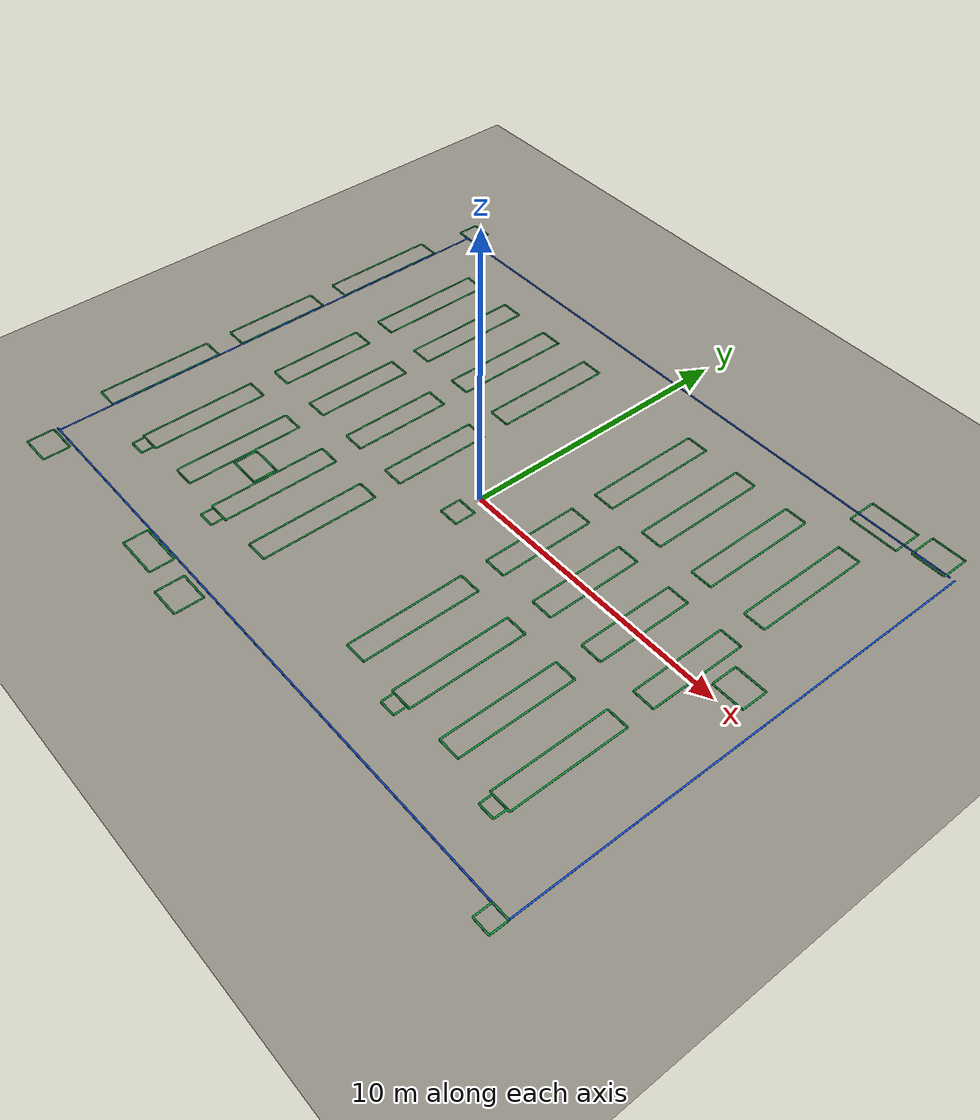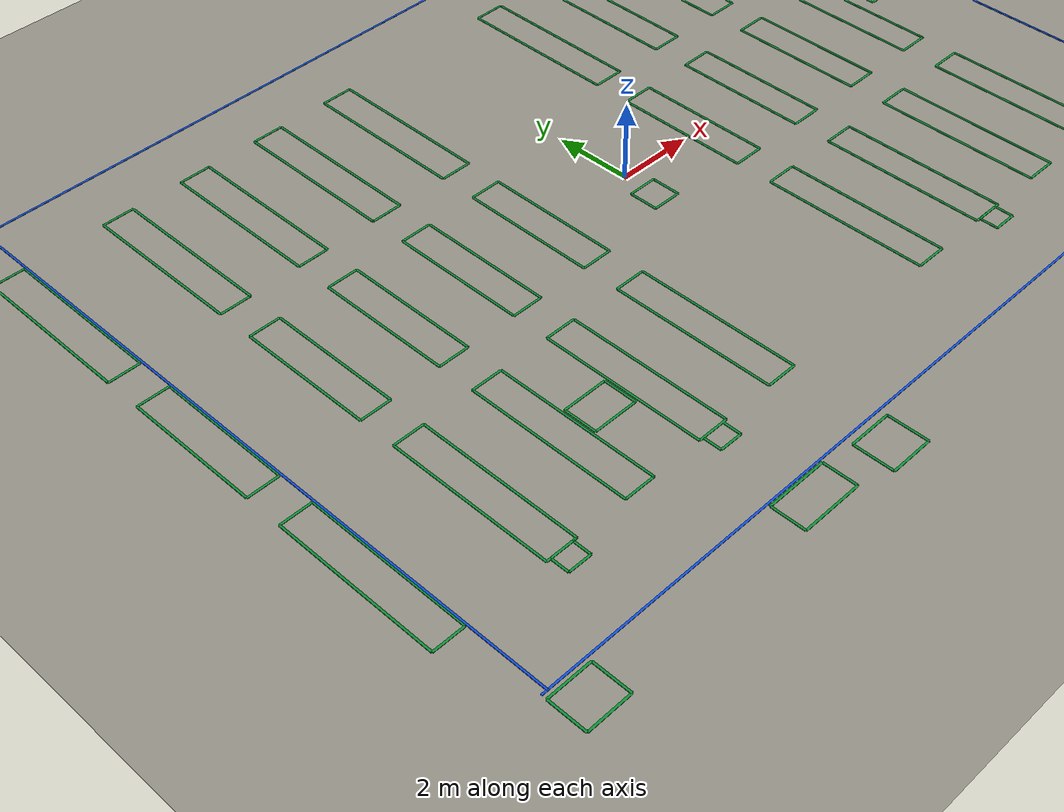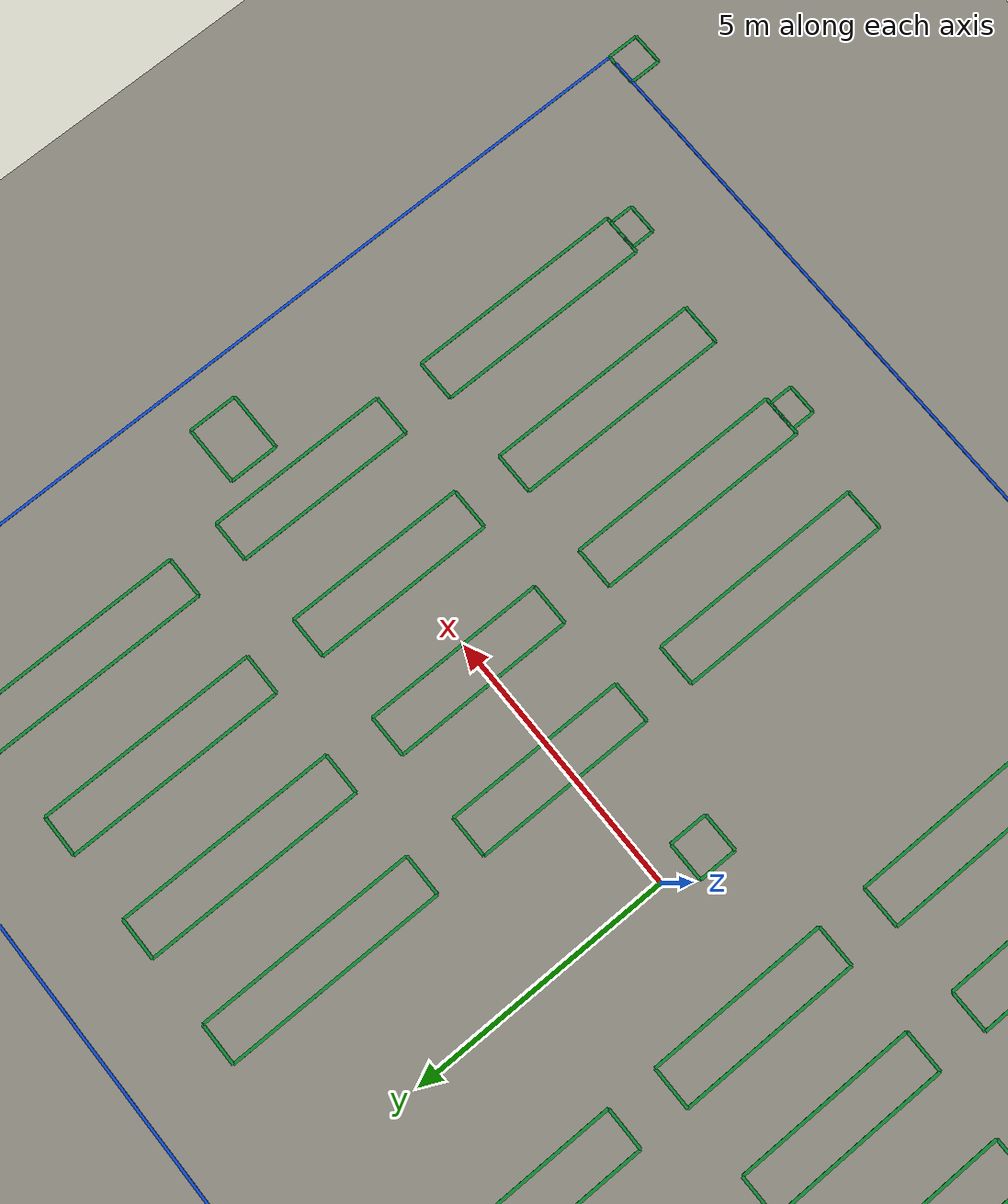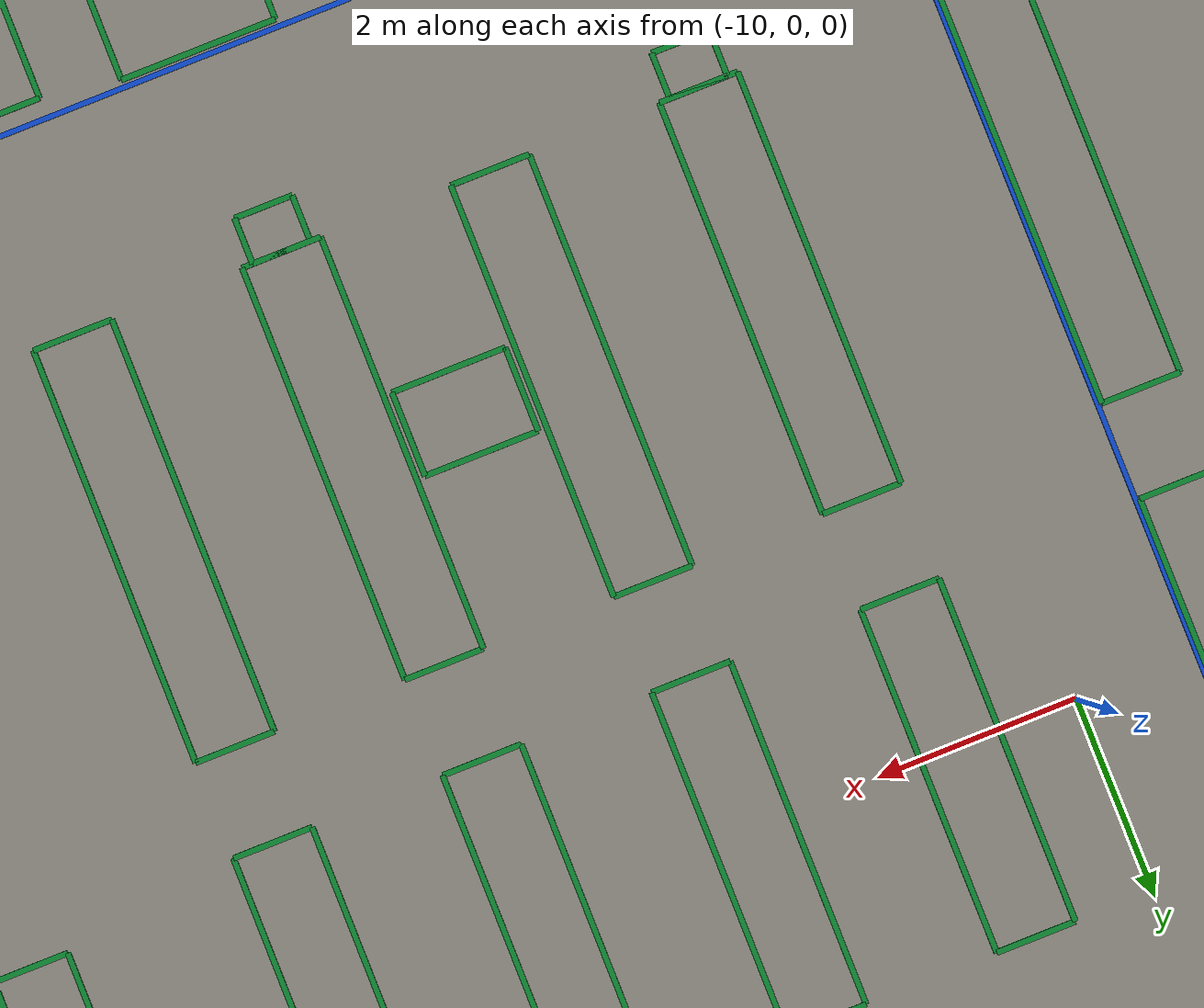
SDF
<sdf version="1.8">
 <world name="warehouse_full_4cam_laptop_640x360_3hz">
  <model name="ground_plane">
   <static>true</static>
   <link name="link">
    <collision name="collision">
     <geometry><plane><normal>0 0 1</normal><size>24.5 20.5</size></plane></geometry>
    </collision>
    <visual name="visual">
     <geometry><plane><normal>0 0 1</normal><size>24.5 20.5</size></plane></geometry>
     <material>
      <ambient>0.56 0.55 0.51 1</ambient>
      <diffuse>0.56 0.55 0.51 1</diffuse>
      <specular>0.05 0.05 0.05 1</specular>
     </material>
    </visual>
   </link>
  </model>
  <model name="known_driveable_boundary">
   <static>true</static>
   <link name="bnd_s">
    <pose>0.000 -8.600 0.035 0 0 0</pose>
    <visual name="visual">
     <geometry><box><size>22.700 0.050 0.014</size></box></geometry>
     <material><ambient>0.05 0.30 0.85 1</ambient><diffuse>0.05 0.30 0.85 1</diffuse></material>
    </visual>
   </link>
   <link name="bnd_n">
    <pose>0.000 8.600 0.035 0 0 0</pose>
    <visual name="visual">
     <geometry><box><size>22.700 0.050 0.014</size></box></geometry>
     <material><ambient>0.05 0.30 0.85 1</ambient><diffuse>0.05 0.30 0.85 1</diffuse></material>
    </visual>
   </link>
   <link name="bnd_w">
    <pose>-11.200 0.000 0.035 0 0 0</pose>
    <visual name="visual">
     <geometry><box><size>0.050 17.200 0.014</size></box></geometry>
     <material><ambient>0.05 0.30 0.85 1</ambient><diffuse>0.05 0.30 0.85 1</diffuse></material>
    </visual>
   </link>
   <link name="bnd_e">
    <pose>11.500 0.000 0.035 0 0 0</pose>
    <visual name="visual">
     <geometry><box><size>0.050 17.200 0.014</size></box></geometry>
     <material><ambient>0.05 0.30 0.85 1</ambient><diffuse>0.05 0.30 0.85 1</diffuse></material>
    </visual>
   </link>
   <link name="nogo_W1_south_outline_s">
    <pose>-8.825 -6.620 0.035 0 0 0</pose>
    <visual name="visual">
     <geometry><box><size>0.790 0.055 0.014</size></box></geometry>
     <material><ambient>0.05 0.55 0.20 1</ambient><diffuse>0.05 0.55 0.20 1</diffuse></material>
    </visual>
   </link>
   <link name="nogo_W1_south_outline_n">
    <pose>-8.825 -2.480 0.035 0 0 0</pose>
    <visual name="visual">
     <geometry><box><size>0.790 0.055 0.014</size></box></geometry>
     <material><ambient>0.05 0.55 0.20 1</ambient><diffuse>0.05 0.55 0.20 1</diffuse></material>
    </visual>
   </link>
   <link name="nogo_W1_south_outline_w">
    <pose>-9.220 -4.550 0.035 0 0 0</pose>
    <visual name="visual">
     <geometry><box><size>0.055 4.140 0.014</size></box></geometry>
     <material><ambient>0.05 0.55 0.20 1</ambient><diffuse>0.05 0.55 0.20 1</diffuse></material>
    </visual>
   </link>
   <link name="nogo_W1_south_outline_e">
    <pose>-8.430 -4.550 0.035 0 0 0</pose>
    <visual name="visual">
     <geometry><box><size>0.055 4.140 0.014</size></box></geometry>
     <material><ambient>0.05 0.55 0.20 1</ambient><diffuse>0.05 0.55 0.20 1</diffuse></material>
    </visual>
   </link>
   <link name="nogo_W1_mid_outline_s">
    <pose>-8.825 -1.520 0.035 0 0 0</pose>
    <visual name="visual">
     <geometry><box><size>0.790 0.055 0.014</size></box></geometry>
     <material><ambient>0.05 0.55 0.20 1</ambient><diffuse>0.05 0.55 0.20 1</diffuse></material>
    </visual>
   </link>
   <link name="nogo_W1_mid_outline_n">
    <pose>-8.825 1.920 0.035 0 0 0</pose>
    <visual name="visual">
     <geometry><box><size>0.790 0.055 0.014</size></box></geometry>
     <material><ambient>0.05 0.55 0.20 1</ambient><diffuse>0.05 0.55 0.20 1</diffuse></material>
    </visual>
   </link>
   <link name="nogo_W1_mid_outline_w">
    <pose>-9.220 0.200 0.035 0 0 0</pose>
    <visual name="visual">
     <geometry><box><size>0.055 3.440 0.014</size></box></geometry>
     <material><ambient>0.05 0.55 0.20 1</ambient><diffuse>0.05 0.55 0.20 1</diffuse></material>
    </visual>
   </link>
   <link name="nogo_W1_mid_outline_e">
    <pose>-8.430 0.200 0.035 0 0 0</pose>
    <visual name="visual">
     <geometry><box><size>0.055 3.440 0.014</size></box></geometry>
     <material><ambient>0.05 0.55 0.20 1</ambient><diffuse>0.05 0.55 0.20 1</diffuse></material>
    </visual>
   </link>
   <link name="nogo_W1_north_outline_s">
    <pose>-8.825 2.880 0.035 0 0 0</pose>
    <visual name="visual">
     <geometry><box><size>0.790 0.055 0.014</size></box></geometry>
     <material><ambient>0.05 0.55 0.20 1</ambient><diffuse>0.05 0.55 0.20 1</diffuse></material>
    </visual>
   </link>
   <link name="nogo_W1_north_outline_n">
    <pose>-8.825 7.020 0.035 0 0 0</pose>
    <visual name="visual">
     <geometry><box><size>0.790 0.055 0.014</size></box></geometry>
     <material><ambient>0.05 0.55 0.20 1</ambient><diffuse>0.05 0.55 0.20 1</diffuse></material>
    </visual>
   </link>
   <link name="nogo_W1_north_outline_w">
    <pose>-9.220 4.950 0.035 0 0 0</pose>
    <visual name="visual">
     <geometry><box><size>0.055 4.140 0.014</size></box></geometry>
     <material><ambient>0.05 0.55 0.20 1</ambient><diffuse>0.05 0.55 0.20 1</diffuse></material>
    </visual>
   </link>
   <link name="nogo_W1_north_outline_e">
    <pose>-8.430 4.950 0.035 0 0 0</pose>
    <visual name="visual">
     <geometry><box><size>0.055 4.140 0.014</size></box></geometry>
     <material><ambient>0.05 0.55 0.20 1</ambient><diffuse>0.05 0.55 0.20 1</diffuse></material>
    </visual>
   </link>
   <link name="nogo_W2_south_outline_s">
    <pose>-6.725 -6.620 0.035 0 0 0</pose>
    <visual name="visual">
     <geometry><box><size>0.790 0.055 0.014</size></box></geometry>
     <material><ambient>0.05 0.55 0.20 1</ambient><diffuse>0.05 0.55 0.20 1</diffuse></material>
    </visual>
   </link>
   <link name="nogo_W2_south_outline_n">
    <pose>-6.725 -2.480 0.035 0 0 0</pose>
    <visual name="visual">
     <geometry><box><size>0.790 0.055 0.014</size></box></geometry>
     <material><ambient>0.05 0.55 0.20 1</ambient><diffuse>0.05 0.55 0.20 1</diffuse></material>
    </visual>
   </link>
   <link name="nogo_W2_south_outline_w">
    <pose>-7.120 -4.550 0.035 0 0 0</pose>
    <visual name="visual">
     <geometry><box><size>0.055 4.140 0.014</size></box></geometry>
     <material><ambient>0.05 0.55 0.20 1</ambient><diffuse>0.05 0.55 0.20 1</diffuse></material>
    </visual>
   </link>
   <link name="nogo_W2_south_outline_e">
    <pose>-6.330 -4.550 0.035 0 0 0</pose>
    <visual name="visual">
     <geometry><box><size>0.055 4.140 0.014</size></box></geometry>
     <material><ambient>0.05 0.55 0.20 1</ambient><diffuse>0.05 0.55 0.20 1</diffuse></material>
    </visual>
   </link>
   <link name="nogo_W2_mid_outline_s">
    <pose>-6.725 -1.520 0.035 0 0 0</pose>
    <visual name="visual">
     <geometry><box><size>0.790 0.055 0.014</size></box></geometry>
     <material><ambient>0.05 0.55 0.20 1</ambient><diffuse>0.05 0.55 0.20 1</diffuse></material>
    </visual>
   </link>
   <link name="nogo_W2_mid_outline_n">
    <pose>-6.725 1.920 0.035 0 0 0</pose>
    <visual name="visual">
     <geometry><box><size>0.790 0.055 0.014</size></box></geometry>
     <material><ambient>0.05 0.55 0.20 1</ambient><diffuse>0.05 0.55 0.20 1</diffuse></material>
    </visual>
   </link>
   <link name="nogo_W2_mid_outline_w">
    <pose>-7.120 0.200 0.035 0 0 0</pose>
    <visual name="visual">
     <geometry><box><size>0.055 3.440 0.014</size></box></geometry>
     <material><ambient>0.05 0.55 0.20 1</ambient><diffuse>0.05 0.55 0.20 1</diffuse></material>
    </visual>
   </link>
   <link name="nogo_W2_mid_outline_e">
    <pose>-6.330 0.200 0.035 0 0 0</pose>
    <visual name="visual">
     <geometry><box><size>0.055 3.440 0.014</size></box></geometry>
     <material><ambient>0.05 0.55 0.20 1</ambient><diffuse>0.05 0.55 0.20 1</diffuse></material>
    </visual>
   </link>
   <link name="nogo_W2_north_outline_s">
    <pose>-6.725 2.880 0.035 0 0 0</pose>
    <visual name="visual">
     <geometry><box><size>0.790 0.055 0.014</size></box></geometry>
     <material><ambient>0.05 0.55 0.20 1</ambient><diffuse>0.05 0.55 0.20 1</diffuse></material>
    </visual>
   </link>
   <link name="nogo_W2_north_outline_n">
    <pose>-6.725 7.020 0.035 0 0 0</pose>
    <visual name="visual">
     <geometry><box><size>0.790 0.055 0.014</size></box></geometry>
     <material><ambient>0.05 0.55 0.20 1</ambient><diffuse>0.05 0.55 0.20 1</diffuse></material>
    </visual>
   </link>
   <link name="nogo_W2_north_outline_w">
    <pose>-7.120 4.950 0.035 0 0 0</pose>
    <visual name="visual">
     <geometry><box><size>0.055 4.140 0.014</size></box></geometry>
     <material><ambient>0.05 0.55 0.20 1</ambient><diffuse>0.05 0.55 0.20 1</diffuse></material>
    </visual>
   </link>
   <link name="nogo_W2_north_outline_e">
    <pose>-6.330 4.950 0.035 0 0 0</pose>
    <visual name="visual">
     <geometry><box><size>0.055 4.140 0.014</size></box></geometry>
     <material><ambient>0.05 0.55 0.20 1</ambient><diffuse>0.05 0.55 0.20 1</diffuse></material>
    </visual>
   </link>
   <link name="nogo_W3_south_outline_s">
    <pose>-4.625 -6.620 0.035 0 0 0</pose>
    <visual name="visual">
     <geometry><box><size>0.790 0.055 0.014</size></box></geometry>
     <material><ambient>0.05 0.55 0.20 1</ambient><diffuse>0.05 0.55 0.20 1</diffuse></material>
    </visual>
   </link>
   <link name="nogo_W3_south_outline_n">
    <pose>-4.625 -2.480 0.035 0 0 0</pose>
    <visual name="visual">
     <geometry><box><size>0.790 0.055 0.014</size></box></geometry>
     <material><ambient>0.05 0.55 0.20 1</ambient><diffuse>0.05 0.55 0.20 1</diffuse></material>
    </visual>
   </link>
   <link name="nogo_W3_south_outline_w">
    <pose>-5.020 -4.550 0.035 0 0 0</pose>
    <visual name="visual">
     <geometry><box><size>0.055 4.140 0.014</size></box></geometry>
     <material><ambient>0.05 0.55 0.20 1</ambient><diffuse>0.05 0.55 0.20 1</diffuse></material>
    </visual>
   </link>
   <link name="nogo_W3_south_outline_e">
    <pose>-4.230 -4.550 0.035 0 0 0</pose>
    <visual name="visual">
     <geometry><box><size>0.055 4.140 0.014</size></box></geometry>
     <material><ambient>0.05 0.55 0.20 1</ambient><diffuse>0.05 0.55 0.20 1</diffuse></material>
    </visual>
   </link>
   <link name="nogo_W3_mid_outline_s">
    <pose>-4.625 -1.520 0.035 0 0 0</pose>
    <visual name="visual">
     <geometry><box><size>0.790 0.055 0.014</size></box></geometry>
     <material><ambient>0.05 0.55 0.20 1</ambient><diffuse>0.05 0.55 0.20 1</diffuse></material>
    </visual>
   </link>
   <link name="nogo_W3_mid_outline_n">
    <pose>-4.625 1.920 0.035 0 0 0</pose>
    <visual name="visual">
     <geometry><box><size>0.790 0.055 0.014</size></box></geometry>
     <material><ambient>0.05 0.55 0.20 1</ambient><diffuse>0.05 0.55 0.20 1</diffuse></material>
    </visual>
   </link>
   <link name="nogo_W3_mid_outline_w">
    <pose>-5.020 0.200 0.035 0 0 0</pose>
    <visual name="visual">
     <geometry><box><size>0.055 3.440 0.014</size></box></geometry>
     <material><ambient>0.05 0.55 0.20 1</ambient><diffuse>0.05 0.55 0.20 1</diffuse></material>
    </visual>
   </link>
   <link name="nogo_W3_mid_outline_e">
    <pose>-4.230 0.200 0.035 0 0 0</pose>
    <visual name="visual">
     <geometry><box><size>0.055 3.440 0.014</size></box></geometry>
     <material><ambient>0.05 0.55 0.20 1</ambient><diffuse>0.05 0.55 0.20 1</diffuse></material>
    </visual>
   </link>
   <link name="nogo_W3_north_outline_s">
    <pose>-4.625 2.880 0.035 0 0 0</pose>
    <visual name="visual">
     <geometry><box><size>0.790 0.055 0.014</size></box></geometry>
     <material><ambient>0.05 0.55 0.20 1</ambient><diffuse>0.05 0.55 0.20 1</diffuse></material>
    </visual>
   </link>
   <link name="nogo_W3_north_outline_n">
    <pose>-4.625 7.020 0.035 0 0 0</pose>
    <visual name="visual">
     <geometry><box><size>0.790 0.055 0.014</size></box></geometry>
     <material><ambient>0.05 0.55 0.20 1</ambient><diffuse>0.05 0.55 0.20 1</diffuse></material>
    </visual>
   </link>
   <link name="nogo_W3_north_outline_w">
    <pose>-5.020 4.950 0.035 0 0 0</pose>
    <visual name="visual">
     <geometry><box><size>0.055 4.140 0.014</size></box></geometry>
     <material><ambient>0.05 0.55 0.20 1</ambient><diffuse>0.05 0.55 0.20 1</diffuse></material>
    </visual>
   </link>
   <link name="nogo_W3_north_outline_e">
    <pose>-4.230 4.950 0.035 0 0 0</pose>
    <visual name="visual">
     <geometry><box><size>0.055 4.140 0.014</size></box></geometry>
     <material><ambient>0.05 0.55 0.20 1</ambient><diffuse>0.05 0.55 0.20 1</diffuse></material>
    </visual>
   </link>
   <link name="nogo_W4_south_outline_s">
    <pose>-2.525 -6.620 0.035 0 0 0</pose>
    <visual name="visual">
     <geometry><box><size>0.790 0.055 0.014</size></box></geometry>
     <material><ambient>0.05 0.55 0.20 1</ambient><diffuse>0.05 0.55 0.20 1</diffuse></material>
    </visual>
   </link>
   <link name="nogo_W4_south_outline_n">
    <pose>-2.525 -2.480 0.035 0 0 0</pose>
    <visual name="visual">
     <geometry><box><size>0.790 0.055 0.014</size></box></geometry>
     <material><ambient>0.05 0.55 0.20 1</ambient><diffuse>0.05 0.55 0.20 1</diffuse></material>
    </visual>
   </link>
   <link name="nogo_W4_south_outline_w">
    <pose>-2.920 -4.550 0.035 0 0 0</pose>
    <visual name="visual">
     <geometry><box><size>0.055 4.140 0.014</size></box></geometry>
     <material><ambient>0.05 0.55 0.20 1</ambient><diffuse>0.05 0.55 0.20 1</diffuse></material>
    </visual>
   </link>
   <link name="nogo_W4_south_outline_e">
    <pose>-2.130 -4.550 0.035 0 0 0</pose>
    <visual name="visual">
     <geometry><box><size>0.055 4.140 0.014</size></box></geometry>
     <material><ambient>0.05 0.55 0.20 1</ambient><diffuse>0.05 0.55 0.20 1</diffuse></material>
    </visual>
   </link>
   <link name="nogo_W4_mid_outline_s">
    <pose>-2.525 -1.520 0.035 0 0 0</pose>
    <visual name="visual">
     <geometry><box><size>0.790 0.055 0.014</size></box></geometry>
     <material><ambient>0.05 0.55 0.20 1</ambient><diffuse>0.05 0.55 0.20 1</diffuse></material>
    </visual>
   </link>
   <link name="nogo_W4_mid_outline_n">
    <pose>-2.525 1.920 0.035 0 0 0</pose>
    <visual name="visual">
     <geometry><box><size>0.790 0.055 0.014</size></box></geometry>
     <material><ambient>0.05 0.55 0.20 1</ambient><diffuse>0.05 0.55 0.20 1</diffuse></material>
    </visual>
   </link>
   <link name="nogo_W4_mid_outline_w">
    <pose>-2.920 0.200 0.035 0 0 0</pose>
    <visual name="visual">
     <geometry><box><size>0.055 3.440 0.014</size></box></geometry>
     <material><ambient>0.05 0.55 0.20 1</ambient><diffuse>0.05 0.55 0.20 1</diffuse></material>
    </visual>
   </link>
   <link name="nogo_W4_mid_outline_e">
    <pose>-2.130 0.200 0.035 0 0 0</pose>
    <visual name="visual">
     <geometry><box><size>0.055 3.440 0.014</size></box></geometry>
     <material><ambient>0.05 0.55 0.20 1</ambient><diffuse>0.05 0.55 0.20 1</diffuse></material>
    </visual>
   </link>
   <link name="nogo_W4_north_outline_s">
    <pose>-2.525 2.880 0.035 0 0 0</pose>
    <visual name="visual">
     <geometry><box><size>0.790 0.055 0.014</size></box></geometry>
     <material><ambient>0.05 0.55 0.20 1</ambient><diffuse>0.05 0.55 0.20 1</diffuse></material>
    </visual>
   </link>
   <link name="nogo_W4_north_outline_n">
    <pose>-2.525 7.020 0.035 0 0 0</pose>
    <visual name="visual">
     <geometry><box><size>0.790 0.055 0.014</size></box></geometry>
     <material><ambient>0.05 0.55 0.20 1</ambient><diffuse>0.05 0.55 0.20 1</diffuse></material>
    </visual>
   </link>
   <link name="nogo_W4_north_outline_w">
    <pose>-2.920 4.950 0.035 0 0 0</pose>
    <visual name="visual">
     <geometry><box><size>0.055 4.140 0.014</size></box></geometry>
     <material><ambient>0.05 0.55 0.20 1</ambient><diffuse>0.05 0.55 0.20 1</diffuse></material>
    </visual>
   </link>
   <link name="nogo_W4_north_outline_e">
    <pose>-2.130 4.950 0.035 0 0 0</pose>
    <visual name="visual">
     <geometry><box><size>0.055 4.140 0.014</size></box></geometry>
     <material><ambient>0.05 0.55 0.20 1</ambient><diffuse>0.05 0.55 0.20 1</diffuse></material>
    </visual>
   </link>
   <link name="nogo_E1_south_outline_s">
    <pose>2.525 -6.620 0.035 0 0 0</pose>
    <visual name="visual">
     <geometry><box><size>0.790 0.055 0.014</size></box></geometry>
     <material><ambient>0.05 0.55 0.20 1</ambient><diffuse>0.05 0.55 0.20 1</diffuse></material>
    </visual>
   </link>
   <link name="nogo_E1_south_outline_n">
    <pose>2.525 -2.480 0.035 0 0 0</pose>
    <visual name="visual">
     <geometry><box><size>0.790 0.055 0.014</size></box></geometry>
     <material><ambient>0.05 0.55 0.20 1</ambient><diffuse>0.05 0.55 0.20 1</diffuse></material>
    </visual>
   </link>
   <link name="nogo_E1_south_outline_w">
    <pose>2.130 -4.550 0.035 0 0 0</pose>
    <visual name="visual">
     <geometry><box><size>0.055 4.140 0.014</size></box></geometry>
     <material><ambient>0.05 0.55 0.20 1</ambient><diffuse>0.05 0.55 0.20 1</diffuse></material>
    </visual>
   </link>
   <link name="nogo_E1_south_outline_e">
    <pose>2.920 -4.550 0.035 0 0 0</pose>
    <visual name="visual">
     <geometry><box><size>0.055 4.140 0.014</size></box></geometry>
     <material><ambient>0.05 0.55 0.20 1</ambient><diffuse>0.05 0.55 0.20 1</diffuse></material>
    </visual>
   </link>
   <link name="nogo_E1_mid_outline_s">
    <pose>2.525 -1.520 0.035 0 0 0</pose>
    <visual name="visual">
     <geometry><box><size>0.790 0.055 0.014</size></box></geometry>
     <material><ambient>0.05 0.55 0.20 1</ambient><diffuse>0.05 0.55 0.20 1</diffuse></material>
    </visual>
   </link>
   <link name="nogo_E1_mid_outline_n">
    <pose>2.525 1.920 0.035 0 0 0</pose>
    <visual name="visual">
     <geometry><box><size>0.790 0.055 0.014</size></box></geometry>
     <material><ambient>0.05 0.55 0.20 1</ambient><diffuse>0.05 0.55 0.20 1</diffuse></material>
    </visual>
   </link>
   <link name="nogo_E1_mid_outline_w">
    <pose>2.130 0.200 0.035 0 0 0</pose>
    <visual name="visual">
     <geometry><box><size>0.055 3.440 0.014</size></box></geometry>
     <material><ambient>0.05 0.55 0.20 1</ambient><diffuse>0.05 0.55 0.20 1</diffuse></material>
    </visual>
   </link>
   <link name="nogo_E1_mid_outline_e">
    <pose>2.920 0.200 0.035 0 0 0</pose>
    <visual name="visual">
     <geometry><box><size>0.055 3.440 0.014</size></box></geometry>
     <material><ambient>0.05 0.55 0.20 1</ambient><diffuse>0.05 0.55 0.20 1</diffuse></material>
    </visual>
   </link>
   <link name="nogo_E1_north_outline_s">
    <pose>2.525 2.880 0.035 0 0 0</pose>
    <visual name="visual">
     <geometry><box><size>0.790 0.055 0.014</size></box></geometry>
     <material><ambient>0.05 0.55 0.20 1</ambient><diffuse>0.05 0.55 0.20 1</diffuse></material>
    </visual>
   </link>
   <link name="nogo_E1_north_outline_n">
    <pose>2.525 7.020 0.035 0 0 0</pose>
    <visual name="visual">
     <geometry><box><size>0.790 0.055 0.014</size></box></geometry>
     <material><ambient>0.05 0.55 0.20 1</ambient><diffuse>0.05 0.55 0.20 1</diffuse></material>
    </visual>
   </link>
   <link name="nogo_E1_north_outline_w">
    <pose>2.130 4.950 0.035 0 0 0</pose>
    <visual name="visual">
     <geometry><box><size>0.055 4.140 0.014</size></box></geometry>
     <material><ambient>0.05 0.55 0.20 1</ambient><diffuse>0.05 0.55 0.20 1</diffuse></material>
    </visual>
   </link>
   <link name="nogo_E1_north_outline_e">
    <pose>2.920 4.950 0.035 0 0 0</pose>
    <visual name="visual">
     <geometry><box><size>0.055 4.140 0.014</size></box></geometry>
     <material><ambient>0.05 0.55 0.20 1</ambient><diffuse>0.05 0.55 0.20 1</diffuse></material>
    </visual>
   </link>
   <link name="nogo_E2_south_outline_s">
    <pose>4.625 -6.620 0.035 0 0 0</pose>
    <visual name="visual">
     <geometry><box><size>0.790 0.055 0.014</size></box></geometry>
     <material><ambient>0.05 0.55 0.20 1</ambient><diffuse>0.05 0.55 0.20 1</diffuse></material>
    </visual>
   </link>
   <link name="nogo_E2_south_outline_n">
    <pose>4.625 -2.480 0.035 0 0 0</pose>
    <visual name="visual">
     <geometry><box><size>0.790 0.055 0.014</size></box></geometry>
     <material><ambient>0.05 0.55 0.20 1</ambient><diffuse>0.05 0.55 0.20 1</diffuse></material>
    </visual>
   </link>
   <link name="nogo_E2_south_outline_w">
    <pose>4.230 -4.550 0.035 0 0 0</pose>
    <visual name="visual">
     <geometry><box><size>0.055 4.140 0.014</size></box></geometry>
     <material><ambient>0.05 0.55 0.20 1</ambient><diffuse>0.05 0.55 0.20 1</diffuse></material>
    </visual>
   </link>
   <link name="nogo_E2_south_outline_e">
    <pose>5.020 -4.550 0.035 0 0 0</pose>
    <visual name="visual">
     <geometry><box><size>0.055 4.140 0.014</size></box></geometry>
     <material><ambient>0.05 0.55 0.20 1</ambient><diffuse>0.05 0.55 0.20 1</diffuse></material>
    </visual>
   </link>
   <link name="nogo_E2_mid_outline_s">
    <pose>4.625 -1.520 0.035 0 0 0</pose>
    <visual name="visual">
     <geometry><box><size>0.790 0.055 0.014</size></box></geometry>
     <material><ambient>0.05 0.55 0.20 1</ambient><diffuse>0.05 0.55 0.20 1</diffuse></material>
    </visual>
   </link>
   <link name="nogo_E2_mid_outline_n">
    <pose>4.625 1.920 0.035 0 0 0</pose>
    <visual name="visual">
     <geometry><box><size>0.790 0.055 0.014</size></box></geometry>
     <material><ambient>0.05 0.55 0.20 1</ambient><diffuse>0.05 0.55 0.20 1</diffuse></material>
    </visual>
   </link>
   <link name="nogo_E2_mid_outline_w">
    <pose>4.230 0.200 0.035 0 0 0</pose>
    <visual name="visual">
     <geometry><box><size>0.055 3.440 0.014</size></box></geometry>
     <material><ambient>0.05 0.55 0.20 1</ambient><diffuse>0.05 0.55 0.20 1</diffuse></material>
    </visual>
   </link>
   <link name="nogo_E2_mid_outline_e">
    <pose>5.020 0.200 0.035 0 0 0</pose>
    <visual name="visual">
     <geometry><box><size>0.055 3.440 0.014</size></box></geometry>
     <material><ambient>0.05 0.55 0.20 1</ambient><diffuse>0.05 0.55 0.20 1</diffuse></material>
    </visual>
   </link>
   <link name="nogo_E2_north_outline_s">
    <pose>4.625 2.880 0.035 0 0 0</pose>
    <visual name="visual">
     <geometry><box><size>0.790 0.055 0.014</size></box></geometry>
     <material><ambient>0.05 0.55 0.20 1</ambient><diffuse>0.05 0.55 0.20 1</diffuse></material>
    </visual>
   </link>
   <link name="nogo_E2_north_outline_n">
    <pose>4.625 7.020 0.035 0 0 0</pose>
    <visual name="visual">
     <geometry><box><size>0.790 0.055 0.014</size></box></geometry>
     <material><ambient>0.05 0.55 0.20 1</ambient><diffuse>0.05 0.55 0.20 1</diffuse></material>
    </visual>
   </link>
   <link name="nogo_E2_north_outline_w">
    <pose>4.230 4.950 0.035 0 0 0</pose>
    <visual name="visual">
     <geometry><box><size>0.055 4.140 0.014</size></box></geometry>
     <material><ambient>0.05 0.55 0.20 1</ambient><diffuse>0.05 0.55 0.20 1</diffuse></material>
    </visual>
   </link>
   <link name="nogo_E2_north_outline_e">
    <pose>5.020 4.950 0.035 0 0 0</pose>
    <visual name="visual">
     <geometry><box><size>0.055 4.140 0.014</size></box></geometry>
     <material><ambient>0.05 0.55 0.20 1</ambient><diffuse>0.05 0.55 0.20 1</diffuse></material>
    </visual>
   </link>
   <link name="nogo_E3_south_outline_s">
    <pose>6.725 -6.620 0.035 0 0 0</pose>
    <visual name="visual">
     <geometry><box><size>0.790 0.055 0.014</size></box></geometry>
     <material><ambient>0.05 0.55 0.20 1</ambient><diffuse>0.05 0.55 0.20 1</diffuse></material>
    </visual>
   </link>
   <link name="nogo_E3_south_outline_n">
    <pose>6.725 -2.480 0.035 0 0 0</pose>
    <visual name="visual">
     <geometry><box><size>0.790 0.055 0.014</size></box></geometry>
     <material><ambient>0.05 0.55 0.20 1</ambient><diffuse>0.05 0.55 0.20 1</diffuse></material>
    </visual>
   </link>
   <link name="nogo_E3_south_outline_w">
    <pose>6.330 -4.550 0.035 0 0 0</pose>
    <visual name="visual">
     <geometry><box><size>0.055 4.140 0.014</size></box></geometry>
     <material><ambient>0.05 0.55 0.20 1</ambient><diffuse>0.05 0.55 0.20 1</diffuse></material>
    </visual>
   </link>
   <link name="nogo_E3_south_outline_e">
    <pose>7.120 -4.550 0.035 0 0 0</pose>
    <visual name="visual">
     <geometry><box><size>0.055 4.140 0.014</size></box></geometry>
     <material><ambient>0.05 0.55 0.20 1</ambient><diffuse>0.05 0.55 0.20 1</diffuse></material>
    </visual>
   </link>
   <link name="nogo_E3_mid_outline_s">
    <pose>6.725 -1.520 0.035 0 0 0</pose>
    <visual name="visual">
     <geometry><box><size>0.790 0.055 0.014</size></box></geometry>
     <material><ambient>0.05 0.55 0.20 1</ambient><diffuse>0.05 0.55 0.20 1</diffuse></material>
    </visual>
   </link>
   <link name="nogo_E3_mid_outline_n">
    <pose>6.725 1.920 0.035 0 0 0</pose>
    <visual name="visual">
     <geometry><box><size>0.790 0.055 0.014</size></box></geometry>
     <material><ambient>0.05 0.55 0.20 1</ambient><diffuse>0.05 0.55 0.20 1</diffuse></material>
    </visual>
   </link>
   <link name="nogo_E3_mid_outline_w">
    <pose>6.330 0.200 0.035 0 0 0</pose>
    <visual name="visual">
     <geometry><box><size>0.055 3.440 0.014</size></box></geometry>
     <material><ambient>0.05 0.55 0.20 1</ambient><diffuse>0.05 0.55 0.20 1</diffuse></material>
    </visual>
   </link>
   <link name="nogo_E3_mid_outline_e">
    <pose>7.120 0.200 0.035 0 0 0</pose>
    <visual name="visual">
     <geometry><box><size>0.055 3.440 0.014</size></box></geometry>
     <material><ambient>0.05 0.55 0.20 1</ambient><diffuse>0.05 0.55 0.20 1</diffuse></material>
    </visual>
   </link>
   <link name="nogo_E3_north_outline_s">
    <pose>6.725 2.880 0.035 0 0 0</pose>
    <visual name="visual">
     <geometry><box><size>0.790 0.055 0.014</size></box></geometry>
     <material><ambient>0.05 0.55 0.20 1</ambient><diffuse>0.05 0.55 0.20 1</diffuse></material>
    </visual>
   </link>
   <link name="nogo_E3_north_outline_n">
    <pose>6.725 7.020 0.035 0 0 0</pose>
    <visual name="visual">
     <geometry><box><size>0.790 0.055 0.014</size></box></geometry>
     <material><ambient>0.05 0.55 0.20 1</ambient><diffuse>0.05 0.55 0.20 1</diffuse></material>
    </visual>
   </link>
   <link name="nogo_E3_north_outline_w">
    <pose>6.330 4.950 0.035 0 0 0</pose>
    <visual name="visual">
     <geometry><box><size>0.055 4.140 0.014</size></box></geometry>
     <material><ambient>0.05 0.55 0.20 1</ambient><diffuse>0.05 0.55 0.20 1</diffuse></material>
    </visual>
   </link>
   <link name="nogo_E3_north_outline_e">
    <pose>7.120 4.950 0.035 0 0 0</pose>
    <visual name="visual">
     <geometry><box><size>0.055 4.140 0.014</size></box></geometry>
     <material><ambient>0.05 0.55 0.20 1</ambient><diffuse>0.05 0.55 0.20 1</diffuse></material>
    </visual>
   </link>
   <link name="nogo_E4_south_outline_s">
    <pose>8.825 -6.620 0.035 0 0 0</pose>
    <visual name="visual">
     <geometry><box><size>0.790 0.055 0.014</size></box></geometry>
     <material><ambient>0.05 0.55 0.20 1</ambient><diffuse>0.05 0.55 0.20 1</diffuse></material>
    </visual>
   </link>
   <link name="nogo_E4_south_outline_n">
    <pose>8.825 -2.480 0.035 0 0 0</pose>
    <visual name="visual">
     <geometry><box><size>0.790 0.055 0.014</size></box></geometry>
     <material><ambient>0.05 0.55 0.20 1</ambient><diffuse>0.05 0.55 0.20 1</diffuse></material>
    </visual>
   </link>
   <link name="nogo_E4_south_outline_w">
    <pose>8.430 -4.550 0.035 0 0 0</pose>
    <visual name="visual">
     <geometry><box><size>0.055 4.140 0.014</size></box></geometry>
     <material><ambient>0.05 0.55 0.20 1</ambient><diffuse>0.05 0.55 0.20 1</diffuse></material>
    </visual>
   </link>
   <link name="nogo_E4_south_outline_e">
    <pose>9.220 -4.550 0.035 0 0 0</pose>
    <visual name="visual">
     <geometry><box><size>0.055 4.140 0.014</size></box></geometry>
     <material><ambient>0.05 0.55 0.20 1</ambient><diffuse>0.05 0.55 0.20 1</diffuse></material>
    </visual>
   </link>
   <link name="nogo_E4_mid_outline_s">
    <pose>8.825 -1.520 0.035 0 0 0</pose>
    <visual name="visual">
     <geometry><box><size>0.790 0.055 0.014</size></box></geometry>
     <material><ambient>0.05 0.55 0.20 1</ambient><diffuse>0.05 0.55 0.20 1</diffuse></material>
    </visual>
   </link>
   <link name="nogo_E4_mid_outline_n">
    <pose>8.825 1.920 0.035 0 0 0</pose>
    <visual name="visual">
     <geometry><box><size>0.790 0.055 0.014</size></box></geometry>
     <material><ambient>0.05 0.55 0.20 1</ambient><diffuse>0.05 0.55 0.20 1</diffuse></material>
    </visual>
   </link>
   <link name="nogo_E4_mid_outline_w">
    <pose>8.430 0.200 0.035 0 0 0</pose>
    <visual name="visual">
     <geometry><box><size>0.055 3.440 0.014</size></box></geometry>
     <material><ambient>0.05 0.55 0.20 1</ambient><diffuse>0.05 0.55 0.20 1</diffuse></material>
    </visual>
   </link>
   <link name="nogo_E4_mid_outline_e">
    <pose>9.220 0.200 0.035 0 0 0</pose>
    <visual name="visual">
     <geometry><box><size>0.055 3.440 0.014</size></box></geometry>
     <material><ambient>0.05 0.55 0.20 1</ambient><diffuse>0.05 0.55 0.20 1</diffuse></material>
    </visual>
   </link>
   <link name="nogo_E4_north_outline_s">
    <pose>8.825 2.880 0.035 0 0 0</pose>
    <visual name="visual">
     <geometry><box><size>0.790 0.055 0.014</size></box></geometry>
     <material><ambient>0.05 0.55 0.20 1</ambient><diffuse>0.05 0.55 0.20 1</diffuse></material>
    </visual>
   </link>
   <link name="nogo_E4_north_outline_n">
    <pose>8.825 7.020 0.035 0 0 0</pose>
    <visual name="visual">
     <geometry><box><size>0.790 0.055 0.014</size></box></geometry>
     <material><ambient>0.05 0.55 0.20 1</ambient><diffuse>0.05 0.55 0.20 1</diffuse></material>
    </visual>
   </link>
   <link name="nogo_E4_north_outline_w">
    <pose>8.430 4.950 0.035 0 0 0</pose>
    <visual name="visual">
     <geometry><box><size>0.055 4.140 0.014</size></box></geometry>
     <material><ambient>0.05 0.55 0.20 1</ambient><diffuse>0.05 0.55 0.20 1</diffuse></material>
    </visual>
   </link>
   <link name="nogo_E4_north_outline_e">
    <pose>9.220 4.950 0.035 0 0 0</pose>
    <visual name="visual">
     <geometry><box><size>0.055 4.140 0.014</size></box></geometry>
     <material><ambient>0.05 0.55 0.20 1</ambient><diffuse>0.05 0.55 0.20 1</diffuse></material>
    </visual>
   </link>
   <link name="nogo_W0_south_outline_s">
    <pose>-11.635 -6.620 0.035 0 0 0</pose>
    <visual name="visual">
     <geometry><box><size>0.790 0.055 0.014</size></box></geometry>
     <material><ambient>0.05 0.55 0.20 1</ambient><diffuse>0.05 0.55 0.20 1</diffuse></material>
    </visual>
   </link>
   <link name="nogo_W0_south_outline_n">
    <pose>-11.635 -2.480 0.035 0 0 0</pose>
    <visual name="visual">
     <geometry><box><size>0.790 0.055 0.014</size></box></geometry>
     <material><ambient>0.05 0.55 0.20 1</ambient><diffuse>0.05 0.55 0.20 1</diffuse></material>
    </visual>
   </link>
   <link name="nogo_W0_south_outline_w">
    <pose>-12.030 -4.550 0.035 0 0 0</pose>
    <visual name="visual">
     <geometry><box><size>0.055 4.140 0.014</size></box></geometry>
     <material><ambient>0.05 0.55 0.20 1</ambient><diffuse>0.05 0.55 0.20 1</diffuse></material>
    </visual>
   </link>
   <link name="nogo_W0_south_outline_e">
    <pose>-11.240 -4.550 0.035 0 0 0</pose>
    <visual name="visual">
     <geometry><box><size>0.055 4.140 0.014</size></box></geometry>
     <material><ambient>0.05 0.55 0.20 1</ambient><diffuse>0.05 0.55 0.20 1</diffuse></material>
    </visual>
   </link>
   <link name="nogo_W0_mid_outline_s">
    <pose>-11.635 -1.520 0.035 0 0 0</pose>
    <visual name="visual">
     <geometry><box><size>0.790 0.055 0.014</size></box></geometry>
     <material><ambient>0.05 0.55 0.20 1</ambient><diffuse>0.05 0.55 0.20 1</diffuse></material>
    </visual>
   </link>
   <link name="nogo_W0_mid_outline_n">
    <pose>-11.635 1.920 0.035 0 0 0</pose>
    <visual name="visual">
     <geometry><box><size>0.790 0.055 0.014</size></box></geometry>
     <material><ambient>0.05 0.55 0.20 1</ambient><diffuse>0.05 0.55 0.20 1</diffuse></material>
    </visual>
   </link>
   <link name="nogo_W0_mid_outline_w">
    <pose>-12.030 0.200 0.035 0 0 0</pose>
    <visual name="visual">
     <geometry><box><size>0.055 3.440 0.014</size></box></geometry>
     <material><ambient>0.05 0.55 0.20 1</ambient><diffuse>0.05 0.55 0.20 1</diffuse></material>
    </visual>
   </link>
   <link name="nogo_W0_mid_outline_e">
    <pose>-11.240 0.200 0.035 0 0 0</pose>
    <visual name="visual">
     <geometry><box><size>0.055 3.440 0.014</size></box></geometry>
     <material><ambient>0.05 0.55 0.20 1</ambient><diffuse>0.05 0.55 0.20 1</diffuse></material>
    </visual>
   </link>
   <link name="nogo_W0_north_outline_s">
    <pose>-11.635 2.880 0.035 0 0 0</pose>
    <visual name="visual">
     <geometry><box><size>0.790 0.055 0.014</size></box></geometry>
     <material><ambient>0.05 0.55 0.20 1</ambient><diffuse>0.05 0.55 0.20 1</diffuse></material>
    </visual>
   </link>
   <link name="nogo_W0_north_outline_n">
    <pose>-11.635 7.020 0.035 0 0 0</pose>
    <visual name="visual">
     <geometry><box><size>0.790 0.055 0.014</size></box></geometry>
     <material><ambient>0.05 0.55 0.20 1</ambient><diffuse>0.05 0.55 0.20 1</diffuse></material>
    </visual>
   </link>
   <link name="nogo_W0_north_outline_w">
    <pose>-12.030 4.950 0.035 0 0 0</pose>
    <visual name="visual">
     <geometry><box><size>0.055 4.140 0.014</size></box></geometry>
     <material><ambient>0.05 0.55 0.20 1</ambient><diffuse>0.05 0.55 0.20 1</diffuse></material>
    </visual>
   </link>
   <link name="nogo_W0_north_outline_e">
    <pose>-11.240 4.950 0.035 0 0 0</pose>
    <visual name="visual">
     <geometry><box><size>0.055 4.140 0.014</size></box></geometry>
     <material><ambient>0.05 0.55 0.20 1</ambient><diffuse>0.05 0.55 0.20 1</diffuse></material>
    </visual>
   </link>
   <link name="nogo_support_pillar_outline_s">
    <pose>0.000 -1.270 0.035 0 0 0</pose>
    <visual name="visual">
     <geometry><box><size>0.740 0.055 0.014</size></box></geometry>
     <material><ambient>0.05 0.55 0.20 1</ambient><diffuse>0.05 0.55 0.20 1</diffuse></material>
    </visual>
   </link>
   <link name="nogo_support_pillar_outline_n">
    <pose>0.000 -0.530 0.035 0 0 0</pose>
    <visual name="visual">
     <geometry><box><size>0.740 0.055 0.014</size></box></geometry>
     <material><ambient>0.05 0.55 0.20 1</ambient><diffuse>0.05 0.55 0.20 1</diffuse></material>
    </visual>
   </link>
   <link name="nogo_support_pillar_outline_w">
    <pose>-0.370 -0.900 0.035 0 0 0</pose>
    <visual name="visual">
     <geometry><box><size>0.055 0.740 0.014</size></box></geometry>
     <material><ambient>0.05 0.55 0.20 1</ambient><diffuse>0.05 0.55 0.20 1</diffuse></material>
    </visual>
   </link>
   <link name="nogo_support_pillar_outline_e">
    <pose>0.370 -0.900 0.035 0 0 0</pose>
    <visual name="visual">
     <geometry><box><size>0.055 0.740 0.014</size></box></geometry>
     <material><ambient>0.05 0.55 0.20 1</ambient><diffuse>0.05 0.55 0.20 1</diffuse></material>
    </visual>
   </link>
   <link name="nogo_island_stack_outline_s">
    <pose>10.200 0.330 0.035 0 0 0</pose>
    <visual name="visual">
     <geometry><box><size>1.140 0.055 0.014</size></box></geometry>
     <material><ambient>0.05 0.55 0.20 1</ambient><diffuse>0.05 0.55 0.20 1</diffuse></material>
    </visual>
   </link>
   <link name="nogo_island_stack_outline_n">
    <pose>10.200 1.270 0.035 0 0 0</pose>
    <visual name="visual">
     <geometry><box><size>1.140 0.055 0.014</size></box></geometry>
     <material><ambient>0.05 0.55 0.20 1</ambient><diffuse>0.05 0.55 0.20 1</diffuse></material>
    </visual>
   </link>
   <link name="nogo_island_stack_outline_w">
    <pose>9.630 0.800 0.035 0 0 0</pose>
    <visual name="visual">
     <geometry><box><size>0.055 0.940 0.014</size></box></geometry>
     <material><ambient>0.05 0.55 0.20 1</ambient><diffuse>0.05 0.55 0.20 1</diffuse></material>
    </visual>
   </link>
   <link name="nogo_island_stack_outline_e">
    <pose>10.770 0.800 0.035 0 0 0</pose>
    <visual name="visual">
     <geometry><box><size>0.055 0.940 0.014</size></box></geometry>
     <material><ambient>0.05 0.55 0.20 1</ambient><diffuse>0.05 0.55 0.20 1</diffuse></material>
    </visual>
   </link>
   <link name="nogo_dropped_stack_WA2_outline_s">
    <pose>-5.675 -5.020 0.035 0 0 0</pose>
    <visual name="visual">
     <geometry><box><size>1.140 0.055 0.014</size></box></geometry>
     <material><ambient>0.05 0.55 0.20 1</ambient><diffuse>0.05 0.55 0.20 1</diffuse></material>
    </visual>
   </link>
   <link name="nogo_dropped_stack_WA2_outline_n">
    <pose>-5.675 -4.180 0.035 0 0 0</pose>
    <visual name="visual">
     <geometry><box><size>1.140 0.055 0.014</size></box></geometry>
     <material><ambient>0.05 0.55 0.20 1</ambient><diffuse>0.05 0.55 0.20 1</diffuse></material>
    </visual>
   </link>
   <link name="nogo_dropped_stack_WA2_outline_w">
    <pose>-6.245 -4.600 0.035 0 0 0</pose>
    <visual name="visual">
     <geometry><box><size>0.055 0.840 0.014</size></box></geometry>
     <material><ambient>0.05 0.55 0.20 1</ambient><diffuse>0.05 0.55 0.20 1</diffuse></material>
    </visual>
   </link>
   <link name="nogo_dropped_stack_WA2_outline_e">
    <pose>-5.105 -4.600 0.035 0 0 0</pose>
    <visual name="visual">
     <geometry><box><size>0.055 0.840 0.014</size></box></geometry>
     <material><ambient>0.05 0.55 0.20 1</ambient><diffuse>0.05 0.55 0.20 1</diffuse></material>
    </visual>
   </link>
   <link name="nogo_low_crate_0_outline_s">
    <pose>-8.825 -7.080 0.035 0 0 0</pose>
    <visual name="visual">
     <geometry><box><size>0.580 0.055 0.014</size></box></geometry>
     <material><ambient>0.05 0.55 0.20 1</ambient><diffuse>0.05 0.55 0.20 1</diffuse></material>
    </visual>
   </link>
   <link name="nogo_low_crate_0_outline_n">
    <pose>-8.825 -6.620 0.035 0 0 0</pose>
    <visual name="visual">
     <geometry><box><size>0.580 0.055 0.014</size></box></geometry>
     <material><ambient>0.05 0.55 0.20 1</ambient><diffuse>0.05 0.55 0.20 1</diffuse></material>
    </visual>
   </link>
   <link name="nogo_low_crate_0_outline_w">
    <pose>-9.115 -6.850 0.035 0 0 0</pose>
    <visual name="visual">
     <geometry><box><size>0.055 0.460 0.014</size></box></geometry>
     <material><ambient>0.05 0.55 0.20 1</ambient><diffuse>0.05 0.55 0.20 1</diffuse></material>
    </visual>
   </link>
   <link name="nogo_low_crate_0_outline_e">
    <pose>-8.535 -6.850 0.035 0 0 0</pose>
    <visual name="visual">
     <geometry><box><size>0.055 0.460 0.014</size></box></geometry>
     <material><ambient>0.05 0.55 0.20 1</ambient><diffuse>0.05 0.55 0.20 1</diffuse></material>
    </visual>
   </link>
   <link name="nogo_low_crate_1_outline_s">
    <pose>-4.625 -7.080 0.035 0 0 0</pose>
    <visual name="visual">
     <geometry><box><size>0.580 0.055 0.014</size></box></geometry>
     <material><ambient>0.05 0.55 0.20 1</ambient><diffuse>0.05 0.55 0.20 1</diffuse></material>
    </visual>
   </link>
   <link name="nogo_low_crate_1_outline_n">
    <pose>-4.625 -6.620 0.035 0 0 0</pose>
    <visual name="visual">
     <geometry><box><size>0.580 0.055 0.014</size></box></geometry>
     <material><ambient>0.05 0.55 0.20 1</ambient><diffuse>0.05 0.55 0.20 1</diffuse></material>
    </visual>
   </link>
   <link name="nogo_low_crate_1_outline_w">
    <pose>-4.915 -6.850 0.035 0 0 0</pose>
    <visual name="visual">
     <geometry><box><size>0.055 0.460 0.014</size></box></geometry>
     <material><ambient>0.05 0.55 0.20 1</ambient><diffuse>0.05 0.55 0.20 1</diffuse></material>
    </visual>
   </link>
   <link name="nogo_low_crate_1_outline_e">
    <pose>-4.335 -6.850 0.035 0 0 0</pose>
    <visual name="visual">
     <geometry><box><size>0.055 0.460 0.014</size></box></geometry>
     <material><ambient>0.05 0.55 0.20 1</ambient><diffuse>0.05 0.55 0.20 1</diffuse></material>
    </visual>
   </link>
   <link name="nogo_low_crate_2_outline_s">
    <pose>4.625 -7.080 0.035 0 0 0</pose>
    <visual name="visual">
     <geometry><box><size>0.580 0.055 0.014</size></box></geometry>
     <material><ambient>0.05 0.55 0.20 1</ambient><diffuse>0.05 0.55 0.20 1</diffuse></material>
    </visual>
   </link>
   <link name="nogo_low_crate_2_outline_n">
    <pose>4.625 -6.620 0.035 0 0 0</pose>
    <visual name="visual">
     <geometry><box><size>0.580 0.055 0.014</size></box></geometry>
     <material><ambient>0.05 0.55 0.20 1</ambient><diffuse>0.05 0.55 0.20 1</diffuse></material>
    </visual>
   </link>
   <link name="nogo_low_crate_2_outline_w">
    <pose>4.335 -6.850 0.035 0 0 0</pose>
    <visual name="visual">
     <geometry><box><size>0.055 0.460 0.014</size></box></geometry>
     <material><ambient>0.05 0.55 0.20 1</ambient><diffuse>0.05 0.55 0.20 1</diffuse></material>
    </visual>
   </link>
   <link name="nogo_low_crate_2_outline_e">
    <pose>4.915 -6.850 0.035 0 0 0</pose>
    <visual name="visual">
     <geometry><box><size>0.055 0.460 0.014</size></box></geometry>
     <material><ambient>0.05 0.55 0.20 1</ambient><diffuse>0.05 0.55 0.20 1</diffuse></material>
    </visual>
   </link>
   <link name="nogo_low_crate_3_outline_s">
    <pose>8.825 -7.080 0.035 0 0 0</pose>
    <visual name="visual">
     <geometry><box><size>0.580 0.055 0.014</size></box></geometry>
     <material><ambient>0.05 0.55 0.20 1</ambient><diffuse>0.05 0.55 0.20 1</diffuse></material>
    </visual>
   </link>
   <link name="nogo_low_crate_3_outline_n">
    <pose>8.825 -6.620 0.035 0 0 0</pose>
    <visual name="visual">
     <geometry><box><size>0.580 0.055 0.014</size></box></geometry>
     <material><ambient>0.05 0.55 0.20 1</ambient><diffuse>0.05 0.55 0.20 1</diffuse></material>
    </visual>
   </link>
   <link name="nogo_low_crate_3_outline_w">
    <pose>8.535 -6.850 0.035 0 0 0</pose>
    <visual name="visual">
     <geometry><box><size>0.055 0.460 0.014</size></box></geometry>
     <material><ambient>0.05 0.55 0.20 1</ambient><diffuse>0.05 0.55 0.20 1</diffuse></material>
    </visual>
   </link>
   <link name="nogo_low_crate_3_outline_e">
    <pose>9.115 -6.850 0.035 0 0 0</pose>
    <visual name="visual">
     <geometry><box><size>0.055 0.460 0.014</size></box></geometry>
     <material><ambient>0.05 0.55 0.20 1</ambient><diffuse>0.05 0.55 0.20 1</diffuse></material>
    </visual>
   </link>
   <link name="nogo_bucket_dock_outline_s">
    <pose>11.200 -9.210 0.035 0 0 0</pose>
    <visual name="visual">
     <geometry><box><size>0.620 0.055 0.014</size></box></geometry>
     <material><ambient>0.05 0.55 0.20 1</ambient><diffuse>0.05 0.55 0.20 1</diffuse></material>
    </visual>
   </link>
   <link name="nogo_bucket_dock_outline_n">
    <pose>11.200 -8.590 0.035 0 0 0</pose>
    <visual name="visual">
     <geometry><box><size>0.620 0.055 0.014</size></box></geometry>
     <material><ambient>0.05 0.55 0.20 1</ambient><diffuse>0.05 0.55 0.20 1</diffuse></material>
    </visual>
   </link>
   <link name="nogo_bucket_dock_outline_w">
    <pose>10.890 -8.900 0.035 0 0 0</pose>
    <visual name="visual">
     <geometry><box><size>0.055 0.620 0.014</size></box></geometry>
     <material><ambient>0.05 0.55 0.20 1</ambient><diffuse>0.05 0.55 0.20 1</diffuse></material>
    </visual>
   </link>
   <link name="nogo_bucket_dock_outline_e">
    <pose>11.510 -8.900 0.035 0 0 0</pose>
    <visual name="visual">
     <geometry><box><size>0.055 0.620 0.014</size></box></geometry>
     <material><ambient>0.05 0.55 0.20 1</ambient><diffuse>0.05 0.55 0.20 1</diffuse></material>
    </visual>
   </link>
   <link name="nogo_trashcan_nw_outline_s">
    <pose>-11.300 8.625 0.035 0 0 0</pose>
    <visual name="visual">
     <geometry><box><size>0.750 0.055 0.014</size></box></geometry>
     <material><ambient>0.05 0.55 0.20 1</ambient><diffuse>0.05 0.55 0.20 1</diffuse></material>
    </visual>
   </link>
   <link name="nogo_trashcan_nw_outline_n">
    <pose>-11.300 9.375 0.035 0 0 0</pose>
    <visual name="visual">
     <geometry><box><size>0.750 0.055 0.014</size></box></geometry>
     <material><ambient>0.05 0.55 0.20 1</ambient><diffuse>0.05 0.55 0.20 1</diffuse></material>
    </visual>
   </link>
   <link name="nogo_trashcan_nw_outline_w">
    <pose>-11.675 9.000 0.035 0 0 0</pose>
    <visual name="visual">
     <geometry><box><size>0.055 0.750 0.014</size></box></geometry>
     <material><ambient>0.05 0.55 0.20 1</ambient><diffuse>0.05 0.55 0.20 1</diffuse></material>
    </visual>
   </link>
   <link name="nogo_trashcan_nw_outline_e">
    <pose>-10.925 9.000 0.035 0 0 0</pose>
    <visual name="visual">
     <geometry><box><size>0.055 0.750 0.014</size></box></geometry>
     <material><ambient>0.05 0.55 0.20 1</ambient><diffuse>0.05 0.55 0.20 1</diffuse></material>
    </visual>
   </link>
   <link name="nogo_clutterA_sw_outline_s">
    <pose>-10.800 -9.675 0.035 0 0 0</pose>
    <visual name="visual">
     <geometry><box><size>1.100 0.055 0.014</size></box></geometry>
     <material><ambient>0.05 0.55 0.20 1</ambient><diffuse>0.05 0.55 0.20 1</diffuse></material>
    </visual>
   </link>
   <link name="nogo_clutterA_sw_outline_n">
    <pose>-10.800 -8.725 0.035 0 0 0</pose>
    <visual name="visual">
     <geometry><box><size>1.100 0.055 0.014</size></box></geometry>
     <material><ambient>0.05 0.55 0.20 1</ambient><diffuse>0.05 0.55 0.20 1</diffuse></material>
    </visual>
   </link>
   <link name="nogo_clutterA_sw_outline_w">
    <pose>-11.350 -9.200 0.035 0 0 0</pose>
    <visual name="visual">
     <geometry><box><size>0.055 0.950 0.014</size></box></geometry>
     <material><ambient>0.05 0.55 0.20 1</ambient><diffuse>0.05 0.55 0.20 1</diffuse></material>
    </visual>
   </link>
   <link name="nogo_clutterA_sw_outline_e">
    <pose>-10.250 -9.200 0.035 0 0 0</pose>
    <visual name="visual">
     <geometry><box><size>0.055 0.950 0.014</size></box></geometry>
     <material><ambient>0.05 0.55 0.20 1</ambient><diffuse>0.05 0.55 0.20 1</diffuse></material>
    </visual>
   </link>
   <link name="nogo_clutterC_ne_outline_s">
    <pose>10.600 8.500 0.035 0 0 0</pose>
    <visual name="visual">
     <geometry><box><size>1.200 0.055 0.014</size></box></geometry>
     <material><ambient>0.05 0.55 0.20 1</ambient><diffuse>0.05 0.55 0.20 1</diffuse></material>
    </visual>
   </link>
   <link name="nogo_clutterC_ne_outline_n">
    <pose>10.600 9.500 0.035 0 0 0</pose>
    <visual name="visual">
     <geometry><box><size>1.200 0.055 0.014</size></box></geometry>
     <material><ambient>0.05 0.55 0.20 1</ambient><diffuse>0.05 0.55 0.20 1</diffuse></material>
    </visual>
   </link>
   <link name="nogo_clutterC_ne_outline_w">
    <pose>10.000 9.000 0.035 0 0 0</pose>
    <visual name="visual">
     <geometry><box><size>0.055 1.000 0.014</size></box></geometry>
     <material><ambient>0.05 0.55 0.20 1</ambient><diffuse>0.05 0.55 0.20 1</diffuse></material>
    </visual>
   </link>
   <link name="nogo_clutterC_ne_outline_e">
    <pose>11.200 9.000 0.035 0 0 0</pose>
    <visual name="visual">
     <geometry><box><size>0.055 1.000 0.014</size></box></geometry>
     <material><ambient>0.05 0.55 0.20 1</ambient><diffuse>0.05 0.55 0.20 1</diffuse></material>
    </visual>
   </link>
   <link name="nogo_clutterD_dock_outline_s">
    <pose>-2.500 -9.800 0.035 0 0 0</pose>
    <visual name="visual">
     <geometry><box><size>1.100 0.055 0.014</size></box></geometry>
     <material><ambient>0.05 0.55 0.20 1</ambient><diffuse>0.05 0.55 0.20 1</diffuse></material>
    </visual>
   </link>
   <link name="nogo_clutterD_dock_outline_n">
    <pose>-2.500 -8.800 0.035 0 0 0</pose>
    <visual name="visual">
     <geometry><box><size>1.100 0.055 0.014</size></box></geometry>
     <material><ambient>0.05 0.55 0.20 1</ambient><diffuse>0.05 0.55 0.20 1</diffuse></material>
    </visual>
   </link>
   <link name="nogo_clutterD_dock_outline_w">
    <pose>-3.050 -9.300 0.035 0 0 0</pose>
    <visual name="visual">
     <geometry><box><size>0.055 1.000 0.014</size></box></geometry>
     <material><ambient>0.05 0.55 0.20 1</ambient><diffuse>0.05 0.55 0.20 1</diffuse></material>
    </visual>
   </link>
   <link name="nogo_clutterD_dock_outline_e">
    <pose>-1.950 -9.300 0.035 0 0 0</pose>
    <visual name="visual">
     <geometry><box><size>0.055 1.000 0.014</size></box></geometry>
     <material><ambient>0.05 0.55 0.20 1</ambient><diffuse>0.05 0.55 0.20 1</diffuse></material>
    </visual>
   </link>
   <link name="nogo_palletjack_apron_outline_s">
    <pose>-4.600 -9.525 0.035 0 0 0</pose>
    <visual name="visual">
     <geometry><box><size>1.550 0.055 0.014</size></box></geometry>
     <material><ambient>0.05 0.55 0.20 1</ambient><diffuse>0.05 0.55 0.20 1</diffuse></material>
    </visual>
   </link>
   <link name="nogo_palletjack_apron_outline_n">
    <pose>-4.600 -8.675 0.035 0 0 0</pose>
    <visual name="visual">
     <geometry><box><size>1.550 0.055 0.014</size></box></geometry>
     <material><ambient>0.05 0.55 0.20 1</ambient><diffuse>0.05 0.55 0.20 1</diffuse></material>
    </visual>
   </link>
   <link name="nogo_palletjack_apron_outline_w">
    <pose>-5.375 -9.100 0.035 0 0 0</pose>
    <visual name="visual">
     <geometry><box><size>0.055 0.850 0.014</size></box></geometry>
     <material><ambient>0.05 0.55 0.20 1</ambient><diffuse>0.05 0.55 0.20 1</diffuse></material>
    </visual>
   </link>
   <link name="nogo_palletjack_apron_outline_e">
    <pose>-3.825 -9.100 0.035 0 0 0</pose>
    <visual name="visual">
     <geometry><box><size>0.055 0.850 0.014</size></box></geometry>
     <material><ambient>0.05 0.55 0.20 1</ambient><diffuse>0.05 0.55 0.20 1</diffuse></material>
    </visual>
   </link>
   <link name="nogo_desk_qc_ne_outline_s">
    <pose>8.750 8.225 0.035 0 0 0</pose>
    <visual name="visual">
     <geometry><box><size>1.750 0.055 0.014</size></box></geometry>
     <material><ambient>0.05 0.55 0.20 1</ambient><diffuse>0.05 0.55 0.20 1</diffuse></material>
    </visual>
   </link>
   <link name="nogo_desk_qc_ne_outline_n">
    <pose>8.750 9.275 0.035 0 0 0</pose>
    <visual name="visual">
     <geometry><box><size>1.750 0.055 0.014</size></box></geometry>
     <material><ambient>0.05 0.55 0.20 1</ambient><diffuse>0.05 0.55 0.20 1</diffuse></material>
    </visual>
   </link>
   <link name="nogo_desk_qc_ne_outline_w">
    <pose>7.875 8.750 0.035 0 0 0</pose>
    <visual name="visual">
     <geometry><box><size>0.055 1.050 0.014</size></box></geometry>
     <material><ambient>0.05 0.55 0.20 1</ambient><diffuse>0.05 0.55 0.20 1</diffuse></material>
    </visual>
   </link>
   <link name="nogo_desk_qc_ne_outline_e">
    <pose>9.625 8.750 0.035 0 0 0</pose>
    <visual name="visual">
     <geometry><box><size>0.055 1.050 0.014</size></box></geometry>
     <material><ambient>0.05 0.55 0.20 1</ambient><diffuse>0.05 0.55 0.20 1</diffuse></material>
    </visual>
   </link>
  </model>
 </world>
</sdf>
